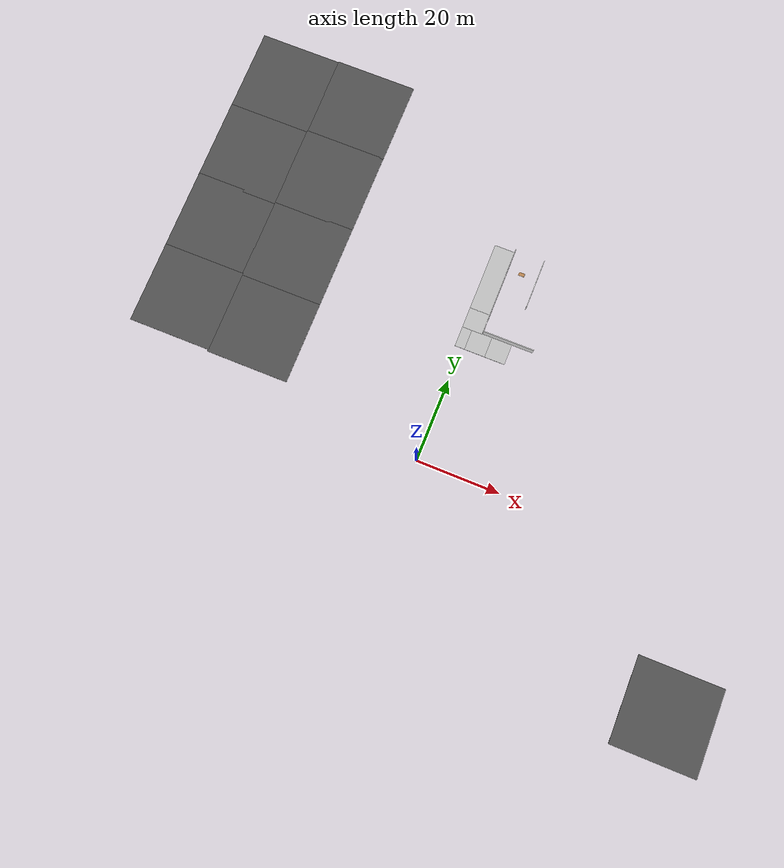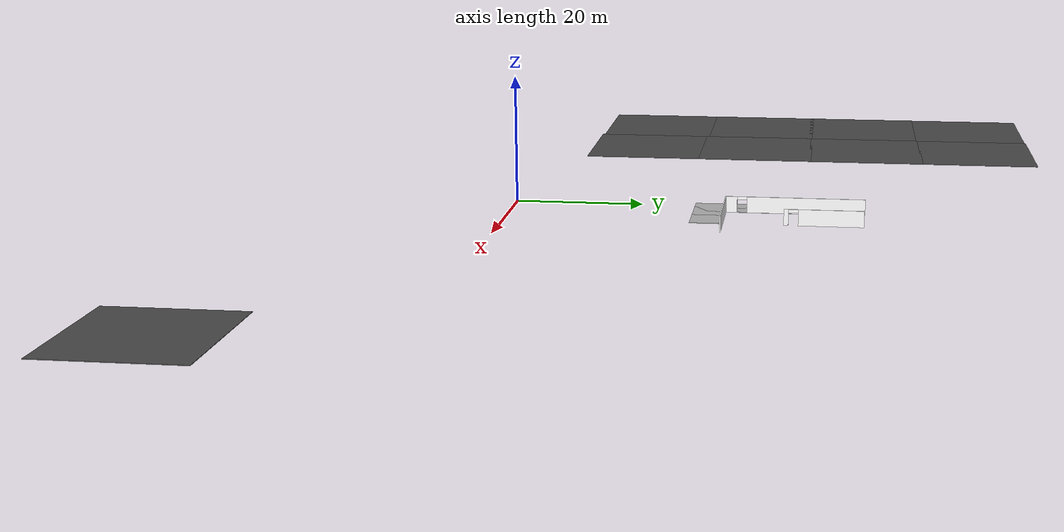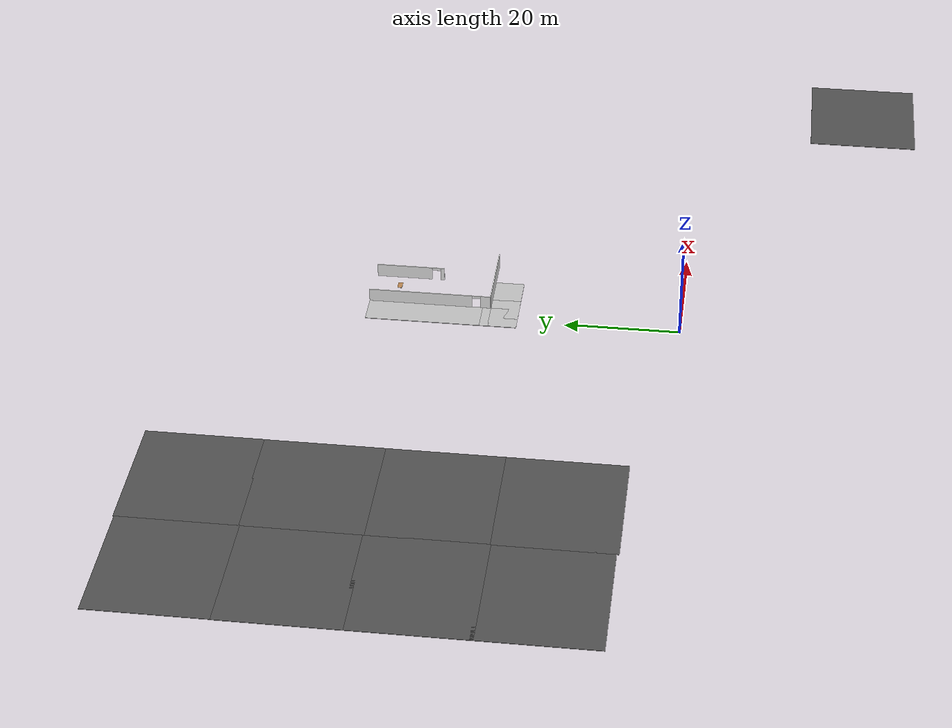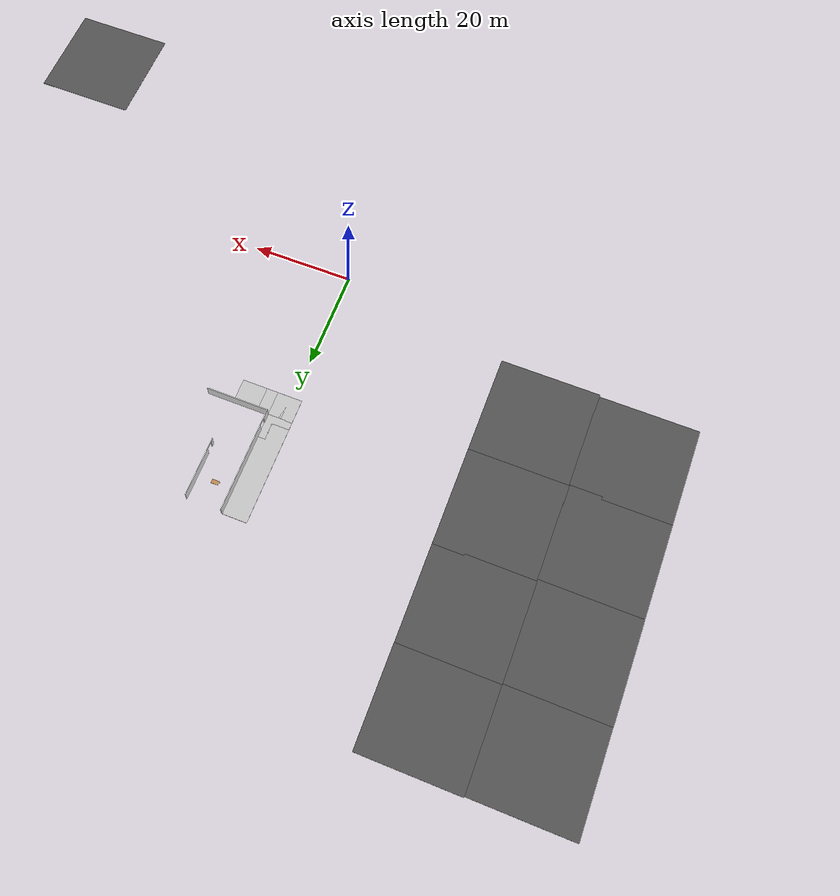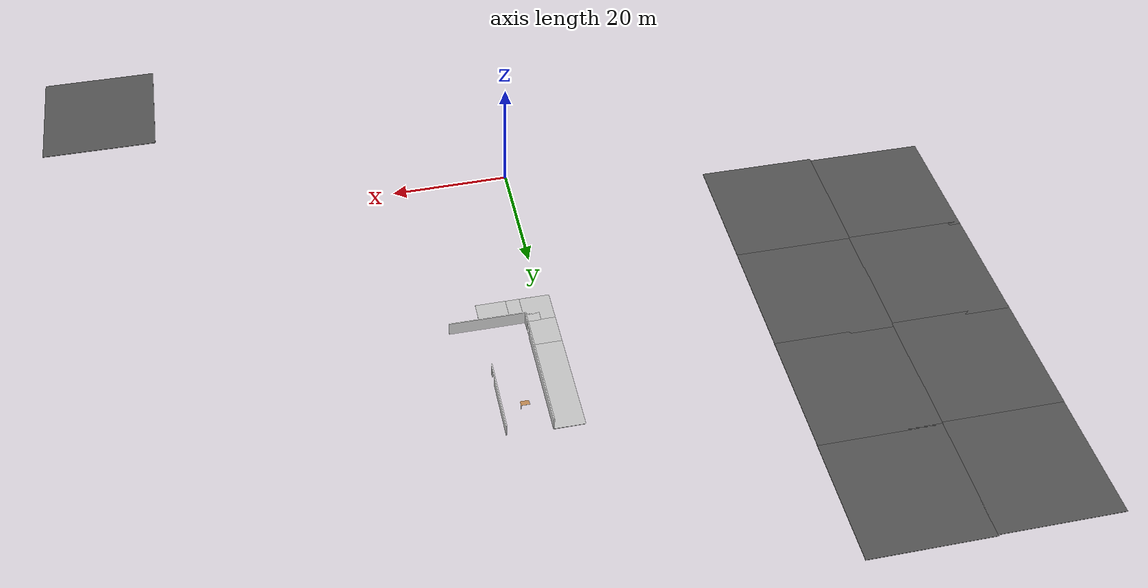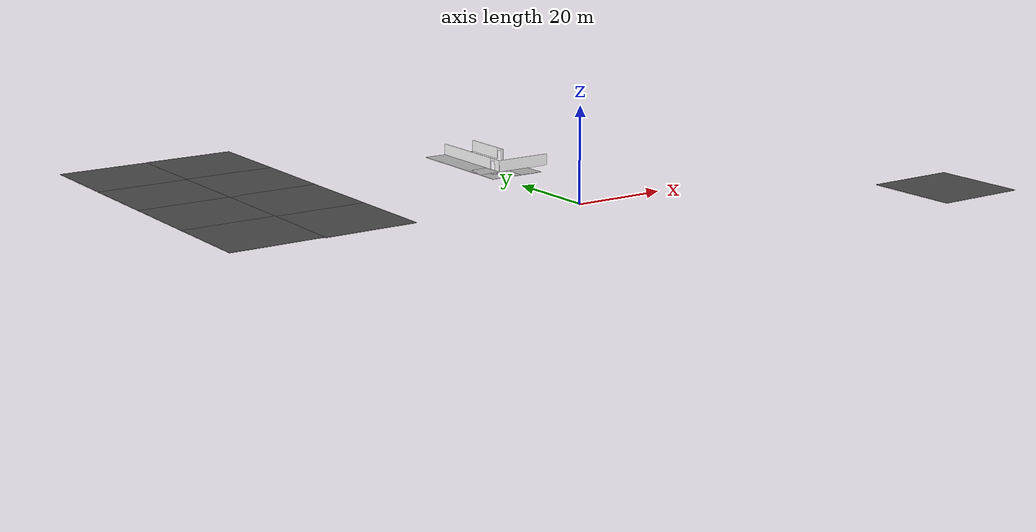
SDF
<sdf version="1.6">
 <world name="default">
  <model name="mainoffice">
   <pose>42.7555 15.4488 0 0 -0 0</pose>
   <link name="Wall_126">
    <pose>-32.2165 33.1629 0 0 -0 1.5708</pose>
    <visual name="Wall_126_Visual_0">
     <pose>-5.66049 0 1.25 0 -0 0</pose>
     <geometry><box><size>0.679016 0.15 2.5</size></box></geometry>
     <material>
      <script>
       <uri>model://office_env/materials/scripts</uri>
       <uri>model://office_env/materials/textures</uri>
       <name>wall</name>
      </script>
      <ambient>1 1 1 1</ambient>
     </material>
    </visual>
    <collision name="Wall_126_Collision_0">
     <geometry><box><size>0.679016 0.15 2.5</size></box></geometry>
     <pose>-5.66049 0 1.25 0 -0 0</pose>
    </collision>
    <visual name="Wall_126_Visual_1">
     <pose>1.08951 0 1.25 0 -0 0</pose>
     <geometry><box><size>9.82098 0.15 2.5</size></box></geometry>
     <material>
      <script>
       <uri>model://office_env/materials/scripts</uri>
       <uri>model://office_env/materials/textures</uri>
       <name>wall</name>
      </script>
      <ambient>1 1 1 1</ambient>
     </material>
    </visual>
    <collision name="Wall_126_Collision_1">
     <geometry><box><size>9.82098 0.15 2.5</size></box></geometry>
     <pose>1.08951 0 1.25 0 -0 0</pose>
    </collision>
    <visual name="Wall_126_Visual_2">
     <pose>-4.57098 0 2.25 0 -0 0</pose>
     <geometry><box><size>1.5 0.15 0.5</size></box></geometry>
     <material>
      <script>
       <uri>model://office_env/materials/scripts</uri>
       <uri>model://office_env/materials/textures</uri>
       <name>wall</name>
      </script>
      <ambient>1 1 1 1</ambient>
     </material>
    </visual>
    <collision name="Wall_126_Collision_2">
     <geometry><box><size>1.5 0.15 0.5</size></box></geometry>
     <pose>-4.57098 0 2.25 0 -0 0</pose>
    </collision>
   </link>
   <link name="Wall_36">
    <collision name="Wall_36_Collision">
     <geometry><box><size>12.5 0.15 2.5</size></box></geometry>
     <pose>0 0 1.25 0 -0 0</pose>
    </collision>
    <visual name="Wall_36_Visual">
     <pose>0 0 1.25 0 -0 0</pose>
     <geometry><box><size>12.5 0.15 2.5</size></box></geometry>
     <material>
      <script>
       <uri>model://office_env/materials/scripts</uri>
       <uri>model://office_env/materials/textures</uri>
       <name>wall</name>
      </script>
      <ambient>1 1 1 1</ambient>
     </material>
    </visual>
    <pose>-33.2741 17.975 0 0 -0 3.14159</pose>
   </link>
   <link name="Wall_37">
    <pose>-39.4491 28.65 0 0 -0 1.5708</pose>
    <visual name="Wall_37_Visual_0">
     <pose>-9.83172 0 1.25 0 -0 0</pose>
     <geometry><box><size>1.83655 0.15 2.5</size></box></geometry>
     <material>
      <script>
       <uri>model://office_env/materials/scripts</uri>
       <uri>model://office_env/materials/textures</uri>
       <name>wall</name>
      </script>
      <ambient>1 1 1 1</ambient>
     </material>
    </visual>
    <collision name="Wall_37_Collision_0">
     <geometry><box><size>1.83655 0.15 2.5</size></box></geometry>
     <pose>-9.83172 0 1.25 0 -0 0</pose>
    </collision>
    <visual name="Wall_37_Visual_1">
     <pose>1.66828 0 1.25 0 -0 0</pose>
     <geometry><box><size>18.1634 0.15 2.5</size></box></geometry>
     <material>
      <script>
       <uri>model://office_env/materials/scripts</uri>
       <uri>model://office_env/materials/textures</uri>
       <name>wall</name>
      </script>
      <ambient>1 1 1 1</ambient>
     </material>
    </visual>
    <collision name="Wall_37_Collision_1">
     <geometry><box><size>18.1634 0.15 2.5</size></box></geometry>
     <pose>1.66828 0 1.25 0 -0 0</pose>
    </collision>
    <visual name="Wall_37_Visual_2">
     <pose>-8.16345 0 2.25 0 -0 0</pose>
     <geometry><box><size>1.5 0.15 0.5</size></box></geometry>
     <material>
      <script>
       <uri>model://office_env/materials/scripts</uri>
       <uri>model://office_env/materials/textures</uri>
       <name>wall</name>
      </script>
      <ambient>1 1 1 1</ambient>
     </material>
    </visual>
    <collision name="Wall_37_Collision_2">
     <geometry><box><size>1.5 0.15 0.5</size></box></geometry>
     <pose>-8.16345 0 2.25 0 -0 0</pose>
    </collision>
   </link>
   <static>1</static>
  </model>
  <model name="asphalt_plane_0">
   <static>1</static>
   <link name="link">
    <collision name="collision"><geometry><box><size>20 20 0.1</size></box></geometry></collision>
    <visual name="visual">
     <cast_shadows>0</cast_shadows>
     <geometry><box><size>20 20 0.1</size></box></geometry>
     <material>
      <script>
       <uri>model://asphalt_plane/materials/scripts</uri>
       <uri>model://asphalt_plane/materials/textures</uri>
       <name>vrc/asphalt</name>
      </script>
     </material>
    </visual>
   </link>
   <pose>-64.5165 75.1071 0 0 -0 0</pose>
  </model>
  <model name="asphalt_plane_1">
   <static>1</static>
   <link name="link">
    <collision name="collision"><geometry><box><size>20 20 0.1</size></box></geometry></collision>
    <visual name="visual">
     <cast_shadows>0</cast_shadows>
     <geometry><box><size>20 20 0.1</size></box></geometry>
     <material>
      <script>
       <uri>model://asphalt_plane/materials/scripts</uri>
       <uri>model://asphalt_plane/materials/textures</uri>
       <name>vrc/asphalt</name>
      </script>
     </material>
    </visual>
   </link>
   <pose>-64.552 55.1303 0 0 -0 0</pose>
  </model>
  <model name="asphalt_plane_2">
   <static>1</static>
   <link name="link">
    <collision name="collision"><geometry><box><size>20 20 0.1</size></box></geometry></collision>
    <visual name="visual">
     <cast_shadows>0</cast_shadows>
     <geometry><box><size>20 20 0.1</size></box></geometry>
     <material>
      <script>
       <uri>model://asphalt_plane/materials/scripts</uri>
       <uri>model://asphalt_plane/materials/textures</uri>
       <name>vrc/asphalt</name>
      </script>
     </material>
    </visual>
   </link>
   <pose>-64.5299 35.7195 0 0 -0 0</pose>
  </model>
  <model name="asphalt_plane_3">
   <static>1</static>
   <link name="link">
    <collision name="collision"><geometry><box><size>20 20 0.1</size></box></geometry></collision>
    <visual name="visual">
     <cast_shadows>0</cast_shadows>
     <geometry><box><size>20 20 0.1</size></box></geometry>
     <material>
      <script>
       <uri>model://asphalt_plane/materials/scripts</uri>
       <uri>model://asphalt_plane/materials/textures</uri>
       <name>vrc/asphalt</name>
      </script>
     </material>
    </visual>
   </link>
   <pose>-64.5166 16.3108 0 0 -0 0</pose>
  </model>
  <model name="asphalt_plane_7">
   <static>1</static>
   <link name="link">
    <collision name="collision"><geometry><box><size>20 20 0.1</size></box></geometry></collision>
    <visual name="visual">
     <cast_shadows>0</cast_shadows>
     <geometry><box><size>20 20 0.1</size></box></geometry>
     <material>
      <script>
       <uri>model://asphalt_plane/materials/scripts</uri>
       <uri>model://asphalt_plane/materials/textures</uri>
       <name>vrc/asphalt</name>
      </script>
     </material>
    </visual>
   </link>
   <pose>-44.6095 75.2915 0 0 -0 0</pose>
  </model>
  <model name="asphalt_plane_8">
   <static>1</static>
   <link name="link">
    <collision name="collision"><geometry><box><size>20 20 0.1</size></box></geometry></collision>
    <visual name="visual">
     <cast_shadows>0</cast_shadows>
     <geometry><box><size>20 20 0.1</size></box></geometry>
     <material>
      <script>
       <uri>model://asphalt_plane/materials/scripts</uri>
       <uri>model://asphalt_plane/materials/textures</uri>
       <name>vrc/asphalt</name>
      </script>
     </material>
    </visual>
   </link>
   <pose>-44.6396 55.5127 0 0 -0 0</pose>
  </model>
  <model name="asphalt_plane_9">
   <static>1</static>
   <link name="link">
    <collision name="collision"><geometry><box><size>20 20 0.1</size></box></geometry></collision>
    <visual name="visual">
     <cast_shadows>0</cast_shadows>
     <geometry><box><size>20 20 0.1</size></box></geometry>
     <material>
      <script>
       <uri>model://asphalt_plane/materials/scripts</uri>
       <uri>model://asphalt_plane/materials/textures</uri>
       <name>vrc/asphalt</name>
      </script>
     </material>
    </visual>
   </link>
   <pose>-44.6546 35.8741 0 0 -0 0</pose>
  </model>
  <model name="asphalt_plane_10">
   <static>1</static>
   <link name="link">
    <collision name="collision"><geometry><box><size>20 20 0.1</size></box></geometry></collision>
    <visual name="visual">
     <cast_shadows>0</cast_shadows>
     <geometry><box><size>20 20 0.1</size></box></geometry>
     <material>
      <script>
       <uri>model://asphalt_plane/materials/scripts</uri>
       <uri>model://asphalt_plane/materials/textures</uri>
       <name>vrc/asphalt</name>
      </script>
     </material>
    </visual>
   </link>
   <pose>-44.653 15.9007 0 0 -0 0</pose>
  </model>
  <model name="asphalt_plane">
   <static>1</static>
   <link name="link">
    <collision name="collision"><geometry><box><size>20 20 0.1</size></box></geometry></collision>
    <visual name="visual">
     <cast_shadows>0</cast_shadows>
     <geometry><box><size>20 20 0.1</size></box></geometry>
     <material>
      <script>
       <uri>model://asphalt_plane/materials/scripts</uri>
       <uri>model://asphalt_plane/materials/textures</uri>
       <name>vrc/asphalt</name>
      </script>
     </material>
    </visual>
   </link>
   <pose>70.7475 -31.5972 0 0 -0 0</pose>
  </model>
  <model name="table">
   <static>0</static>
   <link name="link">
    <collision name="surface">
     <pose>0 0 1 0 -0 0</pose>
     <geometry><box><size>1.5 0.8 0.03</size></box></geometry>
     <surface><friction><ode><mu>0.6</mu><mu2>0.6</mu2></ode></friction></surface>
    </collision>
    <visual name="visual1">
     <pose>0 0 1 0 -0 0</pose>
     <geometry><box><size>1.4 0.8 0.04</size></box></geometry>
     <material>
      <script><uri>file://media/materials/scripts/gazebo.material</uri><name>Gazebo/Wood</name></script>
     </material>
    </visual>
    <collision name="front_left_leg">
     <pose>0.68 0.38 0.5 0 -0 0</pose>
     <geometry><cylinder><radius>0.02</radius><length>1</length></cylinder></geometry>
    </collision>
    <visual name="front_left_leg">
     <pose>0.68 0.38 0.5 0 -0 0</pose>
     <geometry><cylinder><radius>0.02</radius><length>1</length></cylinder></geometry>
     <material>
      <script>
       <uri>model://office_env/materials/scripts</uri>
       <uri>model://office_env/materials/textures</uri>
       <name>wall</name>
      </script>
     </material>
    </visual>
    <collision name="front_right_leg">
     <pose>0.68 -0.38 0.5 0 -0 0</pose>
     <geometry><cylinder><radius>0.02</radius><length>1</length></cylinder></geometry>
    </collision>
    <visual name="front_right_leg">
     <pose>0.68 -0.38 0.5 0 -0 0</pose>
     <geometry><cylinder><radius>0.02</radius><length>1</length></cylinder></geometry>
     <material>
      <script>
       <uri>model://office_env/materials/scripts</uri>
       <uri>model://office_env/materials/textures</uri>
       <name>wall</name>
      </script>
     </material>
    </visual>
    <collision name="back_right_leg">
     <pose>-0.68 -0.38 0.5 0 -0 0</pose>
     <geometry><cylinder><radius>0.02</radius><length>1</length></cylinder></geometry>
    </collision>
    <visual name="back_right_leg">
     <pose>-0.68 -0.38 0.5 0 -0 0</pose>
     <geometry><cylinder><radius>0.02</radius><length>1</length></cylinder></geometry>
     <material>
      <script>
       <uri>model://office_env/materials/scripts</uri>
       <uri>model://office_env/materials/textures</uri>
       <name>wall</name>
      </script>
     </material>
    </visual>
    <collision name="back_left_leg">
     <pose>-0.68 0.38 0.5 0 -0 0</pose>
     <geometry><cylinder><radius>0.02</radius><length>1</length></cylinder></geometry>
    </collision>
    <visual name="back_left_leg">
     <pose>-0.68 0.38 0.5 0 -0 0</pose>
     <geometry><cylinder><radius>0.02</radius><length>1</length></cylinder></geometry>
     <material>
      <script>
       <uri>model://office_env/materials/scripts</uri>
       <uri>model://office_env/materials/textures</uri>
       <name>wall</name>
      </script>
     </material>
    </visual>
    <inertial>
     <inertia><ixx>1</ixx><ixy>0</ixy><ixz>0</ixz><iyy>1</iyy><iyz>0</iyz><izz>1</izz></inertia>
     <mass>1</mass>
    </inertial>
   </link>
   <pose>6.75899 49.9498 0.034999 0 -0 0</pose>
  </model>
  <model name="outdoor_plane_33">
   <static>1</static>
   <link name="link">
    <collision name="collision"><geometry><box><size>5 5 0.1</size></box></geometry></collision>
    <visual name="visual">
     <cast_shadows>0</cast_shadows>
     <geometry><box><size>5 5 0.1</size></box></geometry>
     <material>
      <script>
       <uri>model://outdoor_planesmall/materials/scripts</uri>
       <uri>model://outdoor_planesmall/materials/textures</uri>
       <name>outdss/Image</name>
      </script>
     </material>
    </visual>
   </link>
   <pose>8.10474 30.8535 0 0 -0 0</pose>
  </model>
  <model name="outdoor_plane_34">
   <static>1</static>
   <link name="link">
    <collision name="collision"><geometry><box><size>5 5 0.1</size></box></geometry></collision>
    <visual name="visual">
     <cast_shadows>0</cast_shadows>
     <geometry><box><size>5 5 0.1</size></box></geometry>
     <material>
      <script>
       <uri>model://outdoor_planesmall/materials/scripts</uri>
       <uri>model://outdoor_planesmall/materials/textures</uri>
       <name>outdss/Image</name>
      </script>
     </material>
    </visual>
   </link>
   <pose>3.18164 30.8566 0 0 -0 0</pose>
  </model>
  <model name="outdoor_plane_35">
   <static>1</static>
   <link name="link">
    <collision name="collision"><geometry><box><size>5 5 0.1</size></box></geometry></collision>
    <visual name="visual">
     <cast_shadows>0</cast_shadows>
     <geometry><box><size>5 5 0.1</size></box></geometry>
     <material>
      <script>
       <uri>model://outdoor_planesmall/materials/scripts</uri>
       <uri>model://outdoor_planesmall/materials/textures</uri>
       <name>outdss/Image</name>
      </script>
     </material>
    </visual>
   </link>
   <pose>0.821095 35.7571 0 0 -0 0</pose>
  </model>
  <model name="outdoor_plane_36">
   <static>1</static>
   <link name="link">
    <collision name="collision"><geometry><box><size>5 5 0.1</size></box></geometry></collision>
    <visual name="visual">
     <cast_shadows>0</cast_shadows>
     <geometry><box><size>5 5 0.1</size></box></geometry>
     <material>
      <script>
       <uri>model://outdoor_planesmall/materials/scripts</uri>
       <uri>model://outdoor_planesmall/materials/textures</uri>
       <name>outdss/Image</name>
      </script>
     </material>
    </visual>
   </link>
   <pose>0.830037 30.8668 0 0 -0 0</pose>
  </model>
  <model name="outdoor_plane_37">
   <static>1</static>
   <link name="link">
    <collision name="collision"><geometry><box><size>5 20 0.1</size></box></geometry></collision>
    <visual name="visual">
     <cast_shadows>0</cast_shadows>
     <geometry><box><size>5 20 0.1</size></box></geometry>
     <material>
      <script>
       <uri>model://outdoor_plane/materials/scripts</uri>
       <uri>model://outdoor_plane/materials/textures</uri>
       <name>outds/Image</name>
      </script>
     </material>
    </visual>
   </link>
   <pose>0.816783 44.8307 0 0 -0 0</pose>
  </model>
 </world>
</sdf>
